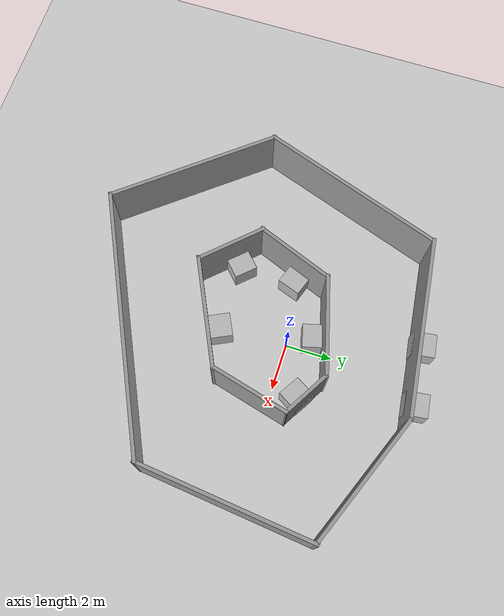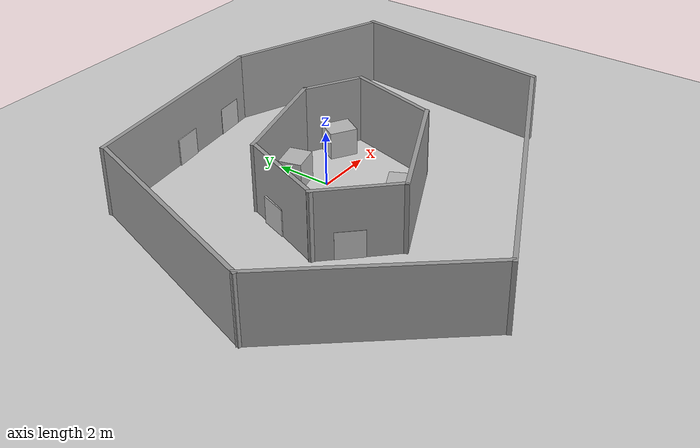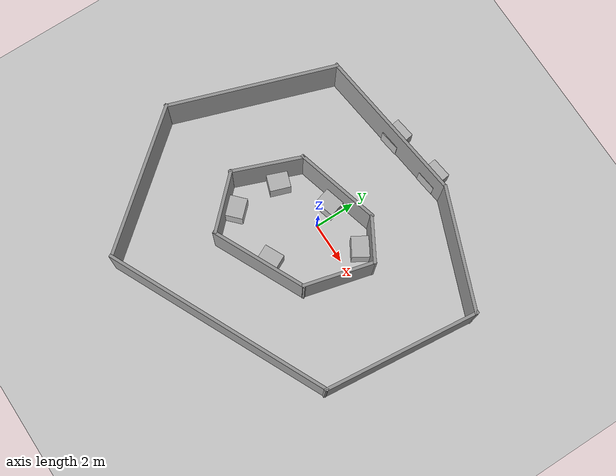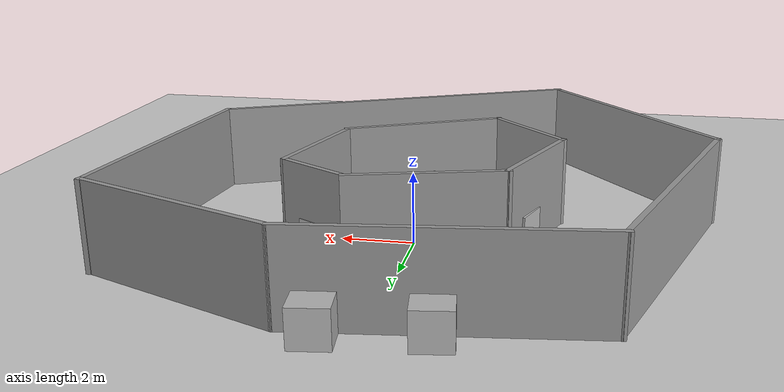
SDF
<sdf version="1.6">
 <world name="default">
  <light name="sun" type="directional">
   <pose>0 0 10 0 -0 0</pose>
   <diffuse>0.8 0.8 0.8 1</diffuse>
   <specular>0.2 0.2 0.2 1</specular>
   <attenuation>
    <range>1000</range>
    <constant>0.9</constant>
    <linear>0.01</linear>
    <quadratic>0.001</quadratic>
   </attenuation>
   <direction>-0.5 0.1 -0.9</direction>
  </light>
  <model name="ground_plane">
   <static>1</static>
   <link name="link">
    <collision name="collision">
     <geometry><plane><normal>0 0 1</normal><size>100 100</size></plane></geometry>
     <surface>
      <contact><collide_bitmask>65535</collide_bitmask></contact>
      <friction><ode><mu>100</mu><mu2>50</mu2></ode></friction>
     </surface>
    </collision>
    <visual name="visual">
     <cast_shadows>0</cast_shadows>
     <geometry><plane><normal>0 0 1</normal><size>100 100</size></plane></geometry>
     <material>
      <script><uri>file://media/materials/scripts/gazebo.material</uri><name>Gazebo/Grey</name></script>
     </material>
    </visual>
   </link>
  </model>
  <gravity>0 0 -9.8</gravity>
  <magnetic_field>6e-06 2.3e-05 -4.2e-05</magnetic_field>
  <atmosphere type="adiabatic"/>
  <physics name="default_physics" default="0" type="ode">
   <max_step_size>0.001</max_step_size>
   <real_time_factor>1</real_time_factor>
   <real_time_update_rate>1000</real_time_update_rate>
  </physics>
  <scene><ambient>0.4 0.4 0.4 1</ambient><background>0.7 0.7 0.7 1</background><shadows>1</shadows></scene>
  <audio><device>default</device></audio>
  <spherical_coordinates>
   <surface_model>EARTH_WGS84</surface_model>
   <latitude_deg>0</latitude_deg>
   <longitude_deg>0</longitude_deg>
   <elevation>0</elevation>
   <heading_deg>0</heading_deg>
  </spherical_coordinates>
  <model name="world_walls">
   <pose>-0.25323 -1.67965 0 0 -0 0</pose>
   <link name="Wall_10">
    <collision name="Wall_10_Collision">
     <geometry><box><size>11.4246 0.15 2.5</size></box></geometry>
     <pose>0 0 1.25 0 -0 0</pose>
    </collision>
    <visual name="Wall_10_Visual">
     <pose>0 0 1.25 0 -0 0</pose>
     <geometry><box><size>11.4246 0.15 2.5</size></box></geometry>
     <material>
      <script><uri>file://media/materials/scripts/gazebo.material</uri><name>Gazebo/Grey</name></script>
      <ambient>1 1 1 1</ambient>
     </material>
     <meta><layer>0</layer></meta>
    </visual>
    <pose>1.96996 -4.77128 0 0 -0 0.442446</pose>
   </link>
   <link name="Wall_11">
    <collision name="Wall_11_Collision">
     <geometry><box><size>7.65878 0.15 2.5</size></box></geometry>
     <pose>0 0 1.25 0 -0 0</pose>
    </collision>
    <visual name="Wall_11_Visual">
     <pose>0 0 1.25 0 -0 0</pose>
     <geometry><box><size>7.65878 0.15 2.5</size></box></geometry>
     <material>
      <script><uri>file://media/materials/scripts/gazebo.material</uri><name>Gazebo/Grey</name></script>
      <ambient>1 1 1 1</ambient>
     </material>
     <meta><layer>0</layer></meta>
    </visual>
    <pose>7.45169 1.33624 0 0 -0 1.46746</pose>
   </link>
   <link name="Wall_13">
    <collision name="Wall_13_Collision">
     <geometry><box><size>7.72754 0.15 2.5</size></box></geometry>
     <pose>0 0 1.25 0 -0 0</pose>
    </collision>
    <visual name="Wall_13_Visual">
     <pose>0 0 1.25 0 -0 0</pose>
     <geometry><box><size>7.72754 0.15 2.5</size></box></geometry>
     <material>
      <script><uri>file://media/materials/scripts/gazebo.material</uri><name>Gazebo/Grey</name></script>
      <ambient>1 1 1 1</ambient>
     </material>
     <meta><layer>0</layer></meta>
    </visual>
    <pose>-1.47129 6.7323 0 0 -0 -3.02113</pose>
   </link>
   <link name="Wall_15">
    <collision name="Wall_15_Collision">
     <geometry><box><size>6.0659 0.15 2.5</size></box></geometry>
     <pose>0 0 1.25 0 -0 0</pose>
    </collision>
    <visual name="Wall_15_Visual">
     <pose>0 0 1.25 0 -0 0</pose>
     <geometry><box><size>6.0659 0.15 2.5</size></box></geometry>
     <material>
      <script><uri>file://media/materials/scripts/gazebo.material</uri><name>Gazebo/Grey</name></script>
      <ambient>1 1 1 1</ambient>
     </material>
     <meta><layer>0</layer></meta>
    </visual>
    <pose>5.08472 6.10887 0 0 -0 -0.373296</pose>
   </link>
   <link name="Wall_8">
    <collision name="Wall_8_Collision">
     <geometry><box><size>8.2991 0.15 2.5</size></box></geometry>
     <pose>0 0 1.25 0 -0 0</pose>
    </collision>
    <visual name="Wall_8_Visual">
     <pose>0 0 1.25 0 -0 0</pose>
     <geometry><box><size>8.2991 0.15 2.5</size></box></geometry>
     <material>
      <script><uri>file://media/materials/scripts/gazebo.material</uri><name>Gazebo/Grey</name></script>
      <ambient>1 1 1 1</ambient>
     </material>
     <meta><layer>0</layer></meta>
    </visual>
    <pose>-6.51137 2.42193 0 0 -0 -1.90051</pose>
   </link>
   <link name="Wall_9">
    <collision name="Wall_9_Collision">
     <geometry><box><size>7.58169 0.15 2.5</size></box></geometry>
     <pose>0 0 1.25 0 -0 0</pose>
    </collision>
    <visual name="Wall_9_Visual">
     <pose>0 0 1.25 0 -0 0</pose>
     <geometry><box><size>7.58169 0.15 2.5</size></box></geometry>
     <material>
      <script><uri>file://media/materials/scripts/gazebo.material</uri><name>Gazebo/Grey</name></script>
      <ambient>1 1 1 1</ambient>
     </material>
     <meta><layer>0</layer></meta>
    </visual>
    <pose>-5.47755 -4.26856 0 0 -0 -0.885055</pose>
   </link>
   <static>1</static>
  </model>
  <model name="apriltag2">
   <pose>-1.43809 4.9768 0.5 0 0 -1.43072</pose>
   <static>1</static>
   <link name="link">
    <collision name="collision">
     <pose>-0.5 0 0 0 -0 0</pose>
     <geometry><box><size>1 1 1</size></box></geometry>
    </collision>
    <visual name="visual">
     <pose>-0.5 0 0 0 -0 0</pose>
     <geometry><mesh><uri>model://apriltag_2/meshes/aptag_2.dae</uri></mesh></geometry>
    </visual>
   </link>
  </model>
  <model name="apriltag3">
   <pose>0.518084 -3.30452 0.5 0 0 -1.11891</pose>
   <static>1</static>
   <link name="link">
    <collision name="collision">
     <pose>-0.5 0 0 0 -0 0</pose>
     <geometry><box><size>1 1 1</size></box></geometry>
    </collision>
    <visual name="visual">
     <pose>-0.5 0 0 0 -0 0</pose>
     <geometry><mesh><uri>model://apriltag_3/meshes/aptag_3.dae</uri></mesh></geometry>
    </visual>
   </link>
  </model>
  <model name="convex_world">
   <pose>-0.285519 -1.22563 0 0 -0 0</pose>
   <link name="Wall_0">
    <collision name="Wall_0_Collision">
     <geometry><box><size>3.55529 0.15 2.5</size></box></geometry>
     <pose>0 0 1.25 0 -0 0</pose>
    </collision>
    <visual name="Wall_0_Visual">
     <pose>0 0 1.25 0 -0 0</pose>
     <geometry><box><size>3.55529 0.15 2.5</size></box></geometry>
     <material>
      <script><uri>file://media/materials/scripts/gazebo.material</uri><name>Gazebo/Grey</name></script>
      <ambient>1 1 1 1</ambient>
     </material>
     <meta><layer>0</layer></meta>
    </visual>
    <pose>-2.91557 0.507519 0 0 -0 -1.94011</pose>
   </link>
   <link name="Wall_1">
    <collision name="Wall_1_Collision">
     <geometry><box><size>3.06823 0.15 2.5</size></box></geometry>
     <pose>0 0 1.25 0 -0 0</pose>
    </collision>
    <visual name="Wall_1_Visual">
     <pose>0 0 1.25 0 -0 0</pose>
     <geometry><box><size>3.06823 0.15 2.5</size></box></geometry>
     <material>
      <script><uri>file://media/materials/scripts/gazebo.material</uri><name>Gazebo/Grey</name></script>
      <ambient>1 1 1 1</ambient>
     </material>
     <meta><layer>0</layer></meta>
    </visual>
    <pose>-2.51716 -2.08395 0 0 -0 -0.803395</pose>
   </link>
   <link name="Wall_2">
    <collision name="Wall_2_Collision">
     <geometry><box><size>4.85168 0.15 2.5</size></box></geometry>
     <pose>0 0 1.25 0 -0 0</pose>
    </collision>
    <visual name="Wall_2_Visual">
     <pose>0 0 1.25 0 -0 0</pose>
     <geometry><box><size>4.85168 0.15 2.5</size></box></geometry>
     <material>
      <script><uri>file://media/materials/scripts/gazebo.material</uri><name>Gazebo/Grey</name></script>
      <ambient>1 1 1 1</ambient>
     </material>
     <meta><layer>0</layer></meta>
    </visual>
    <pose>0.617277 -2.1677 0 0 -0 0.445468</pose>
   </link>
   <link name="Wall_3">
    <collision name="Wall_3_Collision">
     <geometry><box><size>3.50715 0.15 2.5</size></box></geometry>
     <pose>0 0 1.25 0 -0 0</pose>
    </collision>
    <visual name="Wall_3_Visual">
     <pose>0 0 1.25 0 -0 0</pose>
     <geometry><box><size>3.50715 0.15 2.5</size></box></geometry>
     <material>
      <script><uri>file://media/materials/scripts/gazebo.material</uri><name>Gazebo/Grey</name></script>
      <ambient>1 1 1 1</ambient>
     </material>
     <meta><layer>0</layer></meta>
    </visual>
    <pose>3.11864 0.47167 0 0 -0 1.32089</pose>
   </link>
   <link name="Wall_4">
    <collision name="Wall_4_Collision">
     <geometry><box><size>2.25 0.15 2.5</size></box></geometry>
     <pose>0 0 1.25 0 -0 0</pose>
    </collision>
    <visual name="Wall_4_Visual">
     <pose>0 0 1.25 0 -0 0</pose>
     <geometry><box><size>2.25 0.15 2.5</size></box></geometry>
     <material>
      <script><uri>file://media/materials/scripts/gazebo.material</uri><name>Gazebo/Grey</name></script>
      <ambient>1 1 1 1</ambient>
     </material>
     <meta><layer>0</layer></meta>
    </visual>
    <pose>2.62445 2.6231 0 0 -0 2.61799</pose>
   </link>
   <link name="Wall_5">
    <collision name="Wall_5_Collision">
     <geometry><box><size>4.3122 0.15 2.5</size></box></geometry>
     <pose>0 0 1.25 0 -0 0</pose>
    </collision>
    <visual name="Wall_5_Visual">
     <pose>0 0 1.25 0 -0 0</pose>
     <geometry><box><size>4.3122 0.15 2.5</size></box></geometry>
     <material>
      <script><uri>file://media/materials/scripts/gazebo.material</uri><name>Gazebo/Grey</name></script>
      <ambient>1 1 1 1</ambient>
     </material>
     <meta><layer>0</layer></meta>
    </visual>
    <pose>-0.333375 2.64196 0 0 -0 -2.87583</pose>
   </link>
   <static>1</static>
  </model>
  <model name="apriltag16">
   <pose>-3.03728 -3.1948 0.5 0 0 -2.38405</pose>
   <static>1</static>
   <link name="link">
    <collision name="collision">
     <pose>-0.5 0 0 0 -0 0</pose>
     <geometry><box><size>1 1 1</size></box></geometry>
    </collision>
    <visual name="visual">
     <pose>-0.5 0 0 0 -0 0</pose>
     <geometry><mesh><uri>model://apriltag_16/meshes/aptag_16.dae</uri></mesh></geometry>
    </visual>
   </link>
  </model>
  <model name="apriltag18">
   <pose>-3.16645 -0.276602 0.5 0 -0 2.80637</pose>
   <static>1</static>
   <link name="link">
    <collision name="collision">
     <pose>-0.5 0 0 0 -0 0</pose>
     <geometry><box><size>1 1 1</size></box></geometry>
    </collision>
    <visual name="visual">
     <pose>-0.5 0 0 0 -0 0</pose>
     <geometry><mesh><uri>model://apriltag_18/meshes/aptag_18.dae</uri></mesh></geometry>
    </visual>
   </link>
  </model>
  <model name="apriltag17">
   <pose>-0.617313 1.52938 0.5 0 -0 1.83762</pose>
   <static>1</static>
   <link name="link">
    <collision name="collision">
     <pose>-0.5 0 0 0 -0 0</pose>
     <geometry><box><size>1 1 1</size></box></geometry>
    </collision>
    <visual name="visual">
     <pose>-0.5 0 0 0 -0 0</pose>
     <geometry><mesh><uri>model://apriltag_17/meshes/aptag_17.dae</uri></mesh></geometry>
    </visual>
   </link>
  </model>
  <model name="apriltag19">
   <pose>1.1035 5.30657 0.5 0 0 -1.44189</pose>
   <static>1</static>
   <link name="link">
    <collision name="collision">
     <pose>-0.5 0 0 0 -0 0</pose>
     <geometry><box><size>1 1 1</size></box></geometry>
    </collision>
    <visual name="visual">
     <pose>-0.5 0 0 0 -0 0</pose>
     <geometry><mesh><uri>model://apriltag_19/meshes/aptag_19.dae</uri></mesh></geometry>
    </visual>
   </link>
  </model>
  <model name="apriltag0">
   <pose>2.37192 1.48557 0.5 0 -0 1.02858</pose>
   <static>1</static>
   <link name="link">
    <collision name="collision">
     <pose>-0.5 0 0 0 -0 0</pose>
     <geometry><box><size>1 1 1</size></box></geometry>
    </collision>
    <visual name="visual">
     <pose>-0.5 0 0 0 -0 0</pose>
     <geometry><mesh><uri>model://apriltag_0/meshes/aptag_0.dae</uri></mesh></geometry>
    </visual>
   </link>
  </model>
  <light name="user_point_light_0" type="point">
   <pose>-2.57729 -6.45235 1 0 -0 0</pose>
   <diffuse>0.5 0.5 0.5 1</diffuse>
   <specular>0.1 0.1 0.1 1</specular>
   <attenuation>
    <range>20</range>
    <constant>0.5</constant>
    <linear>0.01</linear>
    <quadratic>0.001</quadratic>
   </attenuation>
   <cast_shadows>0</cast_shadows>
   <direction>0 0 -1</direction>
  </light>
  <light name="user_point_light_1" type="point">
   <pose>-6.00353 -1.89192 1 0 -0 0</pose>
   <diffuse>0.5 0.5 0.5 1</diffuse>
   <specular>0.1 0.1 0.1 1</specular>
   <attenuation>
    <range>20</range>
    <constant>0.5</constant>
    <linear>0.01</linear>
    <quadratic>0.001</quadratic>
   </attenuation>
   <cast_shadows>0</cast_shadows>
   <direction>0 0 -1</direction>
  </light>
  <light name="user_point_light_2" type="point">
   <pose>-4.14539 2.52625 1 0 -0 0</pose>
   <diffuse>0.5 0.5 0.5 1</diffuse>
   <specular>0.1 0.1 0.1 1</specular>
   <attenuation>
    <range>20</range>
    <constant>0.5</constant>
    <linear>0.01</linear>
    <quadratic>0.001</quadratic>
   </attenuation>
   <cast_shadows>0</cast_shadows>
   <direction>0 0 -1</direction>
  </light>
  <light name="user_point_light_3" type="point">
   <pose>1.66184 3.34538 1 0 -0 0</pose>
   <diffuse>0.5 0.5 0.5 1</diffuse>
   <specular>0.1 0.1 0.1 1</specular>
   <attenuation>
    <range>20</range>
    <constant>0.5</constant>
    <linear>0.01</linear>
    <quadratic>0.001</quadratic>
   </attenuation>
   <cast_shadows>0</cast_shadows>
   <direction>0 0 -1</direction>
  </light>
  <light name="user_point_light_4" type="point">
   <pose>5.48306 1.41388 1 0 -0 0</pose>
   <diffuse>0.5 0.5 0.5 1</diffuse>
   <specular>0.1 0.1 0.1 1</specular>
   <attenuation>
    <range>20</range>
    <constant>0.5</constant>
    <linear>0.01</linear>
    <quadratic>0.001</quadratic>
   </attenuation>
   <cast_shadows>0</cast_shadows>
   <direction>0 0 -1</direction>
  </light>
  <light name="user_point_light_5" type="point">
   <pose>4.43509 -3.03093 1 0 -0 0</pose>
   <diffuse>0.5 0.5 0.5 1</diffuse>
   <specular>0.1 0.1 0.1 1</specular>
   <attenuation>
    <range>20</range>
    <constant>0.5</constant>
    <linear>0.01</linear>
    <quadratic>0.001</quadratic>
   </attenuation>
   <cast_shadows>0</cast_shadows>
   <direction>0 0 -1</direction>
  </light>
 </world>
</sdf>
